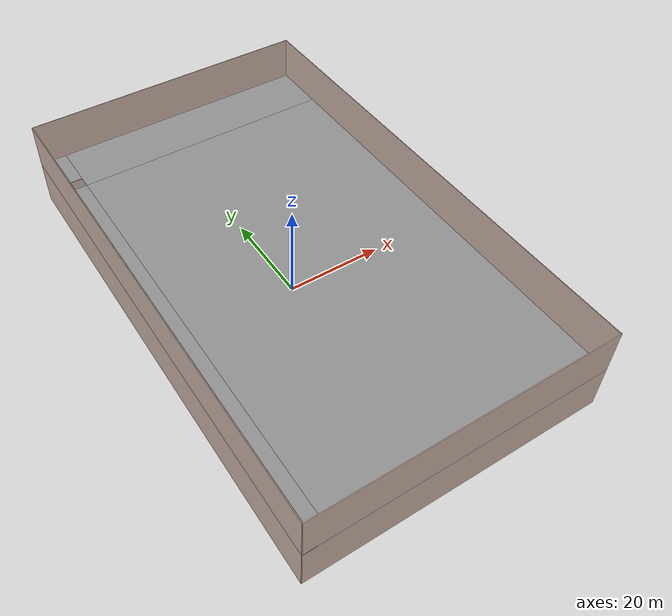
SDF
<?xml version='1.0'?>
<sdf version='1.7'>
  <model name='building1'>
    <link name='Floor_4'>
      <pose>1e-06 -3e-06 9.5 0 -0 0</pose>
      <self_collide>0</self_collide>
      <enable_wind>0</enable_wind>
      <kinematic>0</kinematic>
      <gravity>1</gravity>
      <inertial>
        <mass>1</mass>
        <pose>0 0 0 0 -0 0</pose>
        <inertia>
          <ixx>1</ixx>
          <ixy>0</ixy>
          <ixz>0</ixz>
          <iyy>1</iyy>
          <iyz>0</iyz>
          <izz>1</izz>
        </inertia>
      </inertial>
      <visual name='Floor_4_Visual_1'>
        <pose>2.65 -5.4875 0.05 0 -0 0</pose>
        <geometry>
          <box>
            <size>54.8 88.55 0.1</size>
          </box>
        </geometry>
        <material>
          <script>
            <uri>file://media/materials/scripts/gazebo.material</uri>
            <name>Gazebo/Grey</name>
          </script>
          <ambient>1 1 1 1</ambient>
          <shader type='pixel'>
            <normal_map>__default__</normal_map>
          </shader>
          <diffuse>0.7 0.7 0.7 1</diffuse>
          <specular>0.01 0.01 0.01 1</specular>
          <emissive>0 0 0 1</emissive>
        </material>
        <meta>
          <layer>1</layer>
        </meta>
        <transparency>0</transparency>
        <cast_shadows>1</cast_shadows>
      </visual>
      <visual name='Floor_4_Visual_3'>
        <pose>-26.0025 45.7 0.05 0 -0 0</pose>
        <geometry>
          <box>
            <size>2.515 8.8 0.1</size>
          </box>
        </geometry>
        <material>
          <script>
            <uri>file://media/materials/scripts/gazebo.material</uri>
            <name>Gazebo/Grey</name>
          </script>
          <ambient>1 1 1 1</ambient>
          <shader type='pixel'>
            <normal_map>__default__</normal_map>
          </shader>
          <diffuse>0.7 0.7 0.7 1</diffuse>
          <specular>0.01 0.01 0.01 1</specular>
          <emissive>0 0 0 1</emissive>
        </material>
        <meta>
          <layer>1</layer>
        </meta>
        <transparency>0</transparency>
        <cast_shadows>1</cast_shadows>
      </visual>
      <visual name='ModelPreview_8::Floor_4::visual_4'>
        <pose>-26.0025 -5.6 0.05 0 -0 0</pose>
        <geometry>
          <box>
            <size>2.55 88.8 0.1</size>
          </box>
        </geometry>
        <material>
          <script>
            <uri>file://media/materials/scripts/gazebo.material</uri>
            <name>Gazebo/Grey</name>
          </script>
          <ambient>1 1 1 1</ambient>
          <shader type='pixel'>
            <normal_map>__default__</normal_map>
          </shader>
          <diffuse>0.7 0.7 0.7 1</diffuse>
          <specular>0.01 0.01 0.01 1</specular>
          <emissive>0 0 0 1</emissive>
        </material>
        <meta>
          <layer>1</layer>
        </meta>
        <transparency>0</transparency>
        <cast_shadows>1</cast_shadows>
      </visual>
      <visual name='Floor_4_Visual_2'>
        <pose>2.65 44.39 0.05 0 -0 0</pose>
        <geometry>
          <box>
            <size>54.8 11.205 0.1</size>
          </box>
        </geometry>
        <material>
          <script>
            <uri>file://media/materials/scripts/gazebo.material</uri>
            <name>Gazebo/Grey</name>
          </script>
          <ambient>1 1 1 1</ambient>
          <shader type='pixel'>
            <normal_map>__default__</normal_map>
          </shader>
          <diffuse>0.7 0.7 0.7 1</diffuse>
          <specular>0.01 0.01 0.01 1</specular>
          <emissive>0 0 0 1</emissive>
        </material>
        <meta>
          <layer>1</layer>
        </meta>
        <transparency>0</transparency>
        <cast_shadows>1</cast_shadows>
      </visual>
      <visual name='Floor_4_Visual_0'>
        <pose>-28.63 0 0.05 0 -0 0</pose>
        <geometry>
          <box>
            <size>2.75 100.232 0.1</size>
          </box>
        </geometry>
        <material>
          <script>
            <uri>file://media/materials/scripts/gazebo.material</uri>
            <name>Gazebo/Grey</name>
          </script>
          <ambient>1 1 1 1</ambient>
          <shader type='pixel'>
            <normal_map>__default__</normal_map>
          </shader>
          <diffuse>0.7 0.7 0.7 1</diffuse>
          <specular>0.01 0.01 0.01 1</specular>
          <emissive>0 0 0 1</emissive>
        </material>
        <meta>
          <layer>1</layer>
        </meta>
        <transparency>0</transparency>
        <cast_shadows>1</cast_shadows>
      </visual>
      <collision name='Floor_4_Collision_1'>
        <laser_retro>0</laser_retro>
        <max_contacts>10</max_contacts>
        <pose>1.345 -5.4875 0.05 0 -0 0</pose>
        <geometry>
          <box>
            <size>57.2 88.55 0.1</size>
          </box>
        </geometry>
        <surface>
          <friction>
            <ode>
              <mu>1</mu>
              <mu2>1</mu2>
              <fdir1>0 0 0</fdir1>
              <slip1>0</slip1>
              <slip2>0</slip2>
            </ode>
            <torsional>
              <coefficient>1</coefficient>
              <patch_radius>0</patch_radius>
              <surface_radius>0</surface_radius>
              <use_patch_radius>1</use_patch_radius>
              <ode>
                <slip>0</slip>
              </ode>
            </torsional>
          </friction>
          <bounce>
            <restitution_coefficient>0</restitution_coefficient>
            <threshold>1e+06</threshold>
          </bounce>
          <contact>
            <collide_without_contact>0</collide_without_contact>
            <collide_without_contact_bitmask>1</collide_without_contact_bitmask>
            <collide_bitmask>1</collide_bitmask>
            <ode>
              <soft_cfm>0</soft_cfm>
              <soft_erp>0.2</soft_erp>
              <kp>1e+13</kp>
              <kd>1</kd>
              <max_vel>0.01</max_vel>
              <min_depth>0</min_depth>
            </ode>
            <bullet>
              <split_impulse>1</split_impulse>
              <split_impulse_penetration_threshold>-0.01</split_impulse_penetration_threshold>
              <soft_cfm>0</soft_cfm>
              <soft_erp>0.2</soft_erp>
              <kp>1e+13</kp>
              <kd>1</kd>
            </bullet>
          </contact>
        </surface>
      </collision>
      <collision name='Floor_4_Collision_2'>
        <laser_retro>0</laser_retro>
        <max_contacts>10</max_contacts>
        <pose>2.65 44.39 0.05 0 -0 0</pose>
        <geometry>
          <box>
            <size>54.8 11.205 0.1</size>
          </box>
        </geometry>
        <surface>
          <friction>
            <ode>
              <mu>1</mu>
              <mu2>1</mu2>
              <fdir1>0 0 0</fdir1>
              <slip1>0</slip1>
              <slip2>0</slip2>
            </ode>
            <torsional>
              <coefficient>1</coefficient>
              <patch_radius>0</patch_radius>
              <surface_radius>0</surface_radius>
              <use_patch_radius>1</use_patch_radius>
              <ode>
                <slip>0</slip>
              </ode>
            </torsional>
          </friction>
          <bounce>
            <restitution_coefficient>0</restitution_coefficient>
            <threshold>1e+06</threshold>
          </bounce>
          <contact>
            <collide_without_contact>0</collide_without_contact>
            <collide_without_contact_bitmask>1</collide_without_contact_bitmask>
            <collide_bitmask>1</collide_bitmask>
            <ode>
              <soft_cfm>0</soft_cfm>
              <soft_erp>0.2</soft_erp>
              <kp>1e+13</kp>
              <kd>1</kd>
              <max_vel>0.01</max_vel>
              <min_depth>0</min_depth>
            </ode>
            <bullet>
              <split_impulse>1</split_impulse>
              <split_impulse_penetration_threshold>-0.01</split_impulse_penetration_threshold>
              <soft_cfm>0</soft_cfm>
              <soft_erp>0.2</soft_erp>
              <kp>1e+13</kp>
              <kd>1</kd>
            </bullet>
          </contact>
        </surface>
      </collision>
      <collision name='Floor_4_Collision_3'>
        <laser_retro>0</laser_retro>
        <max_contacts>10</max_contacts>
        <pose>-26.0025 45.7 0.05 0 -0 0</pose>
        <geometry>
          <box>
            <size>2.515 8.8 0.1</size>
          </box>
        </geometry>
        <surface>
          <friction>
            <ode>
              <mu>1</mu>
              <mu2>1</mu2>
              <fdir1>0 0 0</fdir1>
              <slip1>0</slip1>
              <slip2>0</slip2>
            </ode>
            <torsional>
              <coefficient>1</coefficient>
              <patch_radius>0</patch_radius>
              <surface_radius>0</surface_radius>
              <use_patch_radius>1</use_patch_radius>
              <ode>
                <slip>0</slip>
              </ode>
            </torsional>
          </friction>
          <bounce>
            <restitution_coefficient>0</restitution_coefficient>
            <threshold>1e+06</threshold>
          </bounce>
          <contact>
            <collide_without_contact>0</collide_without_contact>
            <collide_without_contact_bitmask>1</collide_without_contact_bitmask>
            <collide_bitmask>1</collide_bitmask>
            <ode>
              <soft_cfm>0</soft_cfm>
              <soft_erp>0.2</soft_erp>
              <kp>1e+13</kp>
              <kd>1</kd>
              <max_vel>0.01</max_vel>
              <min_depth>0</min_depth>
            </ode>
            <bullet>
              <split_impulse>1</split_impulse>
              <split_impulse_penetration_threshold>-0.01</split_impulse_penetration_threshold>
              <soft_cfm>0</soft_cfm>
              <soft_erp>0.2</soft_erp>
              <kp>1e+13</kp>
              <kd>1</kd>
            </bullet>
          </contact>
        </surface>
      </collision>
      <collision name='Floor_4_Collision_0'>
        <laser_retro>0</laser_retro>
        <max_contacts>10</max_contacts>
        <pose>-28.63 0 0.05 0 -0 0</pose>
        <geometry>
          <box>
            <size>2.74 100.232 0.1</size>
          </box>
        </geometry>
        <surface>
          <friction>
            <ode>
              <mu>1</mu>
              <mu2>1</mu2>
              <fdir1>0 0 0</fdir1>
              <slip1>0</slip1>
              <slip2>0</slip2>
            </ode>
            <torsional>
              <coefficient>1</coefficient>
              <patch_radius>0</patch_radius>
              <surface_radius>0</surface_radius>
              <use_patch_radius>1</use_patch_radius>
              <ode>
                <slip>0</slip>
              </ode>
            </torsional>
          </friction>
          <bounce>
            <restitution_coefficient>0</restitution_coefficient>
            <threshold>1e+06</threshold>
          </bounce>
          <contact>
            <collide_without_contact>0</collide_without_contact>
            <collide_without_contact_bitmask>1</collide_without_contact_bitmask>
            <collide_bitmask>1</collide_bitmask>
            <ode>
              <soft_cfm>0</soft_cfm>
              <soft_erp>0.2</soft_erp>
              <kp>1e+13</kp>
              <kd>1</kd>
              <max_vel>0.01</max_vel>
              <min_depth>0</min_depth>
            </ode>
            <bullet>
              <split_impulse>1</split_impulse>
              <split_impulse_penetration_threshold>-0.01</split_impulse_penetration_threshold>
              <soft_cfm>0</soft_cfm>
              <soft_erp>0.2</soft_erp>
              <kp>1e+13</kp>
              <kd>1</kd>
            </bullet>
          </contact>
        </surface>
      </collision>
    </link>

    <link name='Wall_25'>
      <pose>-30.0274 0.041012 0 0 -0 1.5708</pose>
      <self_collide>0</self_collide>
      <enable_wind>0</enable_wind>
      <kinematic>0</kinematic>
      <visual name='Wall_25_Visual'>
        <pose>0 0 4.7 0 -0 0</pose>
        <geometry>
          <box>
            <size>100.15 0.15 9.5</size>
          </box>
        </geometry>
        <material>
          <script>
            <uri>file://media/materials/scripts/gazebo.material</uri>
            <name>Gazebo/Grey</name>
          </script>
          <ambient>0.760784 0.662745 0.627451 1</ambient>
          <shader type='pixel'/>
        </material>
        <meta>
          <layer>0</layer>
        </meta>
        <transparency>0</transparency>
        <cast_shadows>1</cast_shadows>
      </visual>
      <collision name='Wall_25_Collision'>
        <laser_retro>0</laser_retro>
        <max_contacts>10</max_contacts>
        <pose>0 0 4.7 0 -0 0</pose>
        <geometry>
          <box>
            <size>100.15 0.15 9.5</size>
          </box>
        </geometry>
        <surface>
          <friction>
            <ode>
              <mu>1</mu>
              <mu2>1</mu2>
              <fdir1>0 0 0</fdir1>
              <slip1>0</slip1>
              <slip2>0</slip2>
            </ode>
            <torsional>
              <coefficient>1</coefficient>
              <patch_radius>0</patch_radius>
              <surface_radius>0</surface_radius>
              <use_patch_radius>1</use_patch_radius>
              <ode>
                <slip>0</slip>
              </ode>
            </torsional>
          </friction>
          <bounce>
            <restitution_coefficient>0</restitution_coefficient>
            <threshold>1e+06</threshold>
          </bounce>
          <contact>
            <collide_without_contact>0</collide_without_contact>
            <collide_without_contact_bitmask>1</collide_without_contact_bitmask>
            <collide_bitmask>1</collide_bitmask>
            <ode>
              <soft_cfm>0</soft_cfm>
              <soft_erp>0.2</soft_erp>
              <kp>1e+13</kp>
              <kd>1</kd>
              <max_vel>0.01</max_vel>
              <min_depth>0</min_depth>
            </ode>
            <bullet>
              <split_impulse>1</split_impulse>
              <split_impulse_penetration_threshold>-0.01</split_impulse_penetration_threshold>
              <soft_cfm>0</soft_cfm>
              <soft_erp>0.2</soft_erp>
              <kp>1e+13</kp>
              <kd>1</kd>
            </bullet>
          </contact>
        </surface>
      </collision>
    </link>

    <link name='Wall_26'>
      <pose>-0.027363 50.041 0 0 -0 0</pose>
      <self_collide>0</self_collide>
      <enable_wind>0</enable_wind>
      <kinematic>0</kinematic>
      <visual name='Wall_26_Visual'>
        <pose>0 0 4.7 0 -0 0</pose>
        <geometry>
          <box>
            <size>60.15 0.15 9.5</size>
          </box>
        </geometry>
        <material>
          <script>
            <uri>file://media/materials/scripts/gazebo.material</uri>
            <name>Gazebo/Grey</name>
          </script>
          <ambient>0.760784 0.662745 0.627451 1</ambient>
          <shader type='pixel'/>
        </material>
        <meta>
          <layer>0</layer>
        </meta>
        <transparency>0</transparency>
        <cast_shadows>1</cast_shadows>
      </visual>
      <collision name='Wall_26_Collision'>
        <laser_retro>0</laser_retro>
        <max_contacts>10</max_contacts>
        <pose>0 0 4.7 0 -0 0</pose>
        <geometry>
          <box>
            <size>60.15 0.15 9.5</size>
          </box>
        </geometry>
        <surface>
          <friction>
            <ode>
              <mu>1</mu>
              <mu2>1</mu2>
              <fdir1>0 0 0</fdir1>
              <slip1>0</slip1>
              <slip2>0</slip2>
            </ode>
            <torsional>
              <coefficient>1</coefficient>
              <patch_radius>0</patch_radius>
              <surface_radius>0</surface_radius>
              <use_patch_radius>1</use_patch_radius>
              <ode>
                <slip>0</slip>
              </ode>
            </torsional>
          </friction>
          <bounce>
            <restitution_coefficient>0</restitution_coefficient>
            <threshold>1e+06</threshold>
          </bounce>
          <contact>
            <collide_without_contact>0</collide_without_contact>
            <collide_without_contact_bitmask>1</collide_without_contact_bitmask>
            <collide_bitmask>1</collide_bitmask>
            <ode>
              <soft_cfm>0</soft_cfm>
              <soft_erp>0.2</soft_erp>
              <kp>1e+13</kp>
              <kd>1</kd>
              <max_vel>0.01</max_vel>
              <min_depth>0</min_depth>
            </ode>
            <bullet>
              <split_impulse>1</split_impulse>
              <split_impulse_penetration_threshold>-0.01</split_impulse_penetration_threshold>
              <soft_cfm>0</soft_cfm>
              <soft_erp>0.2</soft_erp>
              <kp>1e+13</kp>
              <kd>1</kd>
            </bullet>
          </contact>
        </surface>
      </collision>
    </link>

    <link name='Wall_27'>
      <pose>29.9726 0.041012 0 0 0 -1.5708</pose>
      <self_collide>0</self_collide>
      <enable_wind>0</enable_wind>
      <kinematic>0</kinematic>
      <visual name='Wall_27_Visual'>
        <pose>0 0 4.7 0 -0 0</pose>
        <geometry>
          <box>
            <size>100.15 0.15 9.5</size>
          </box>
        </geometry>
        <material>
          <script>
            <uri>file://media/materials/scripts/gazebo.material</uri>
            <name>Gazebo/Grey</name>
          </script>
          <ambient>0.760784 0.662745 0.627451 1</ambient>
          <shader type='pixel'/>
        </material>
        <meta>
          <layer>0</layer>
        </meta>
        <transparency>0</transparency>
        <cast_shadows>1</cast_shadows>
      </visual>
      <collision name='Wall_27_Collision'>
        <laser_retro>0</laser_retro>
        <max_contacts>10</max_contacts>
        <pose>0 0 4.7 0 -0 0</pose>
        <geometry>
          <box>
            <size>100.15 0.15 9.5</size>
          </box>
        </geometry>
        <surface>
          <friction>
            <ode>
              <mu>1</mu>
              <mu2>1</mu2>
              <fdir1>0 0 0</fdir1>
              <slip1>0</slip1>
              <slip2>0</slip2>
            </ode>
            <torsional>
              <coefficient>1</coefficient>
              <patch_radius>0</patch_radius>
              <surface_radius>0</surface_radius>
              <use_patch_radius>1</use_patch_radius>
              <ode>
                <slip>0</slip>
              </ode>
            </torsional>
          </friction>
          <bounce>
            <restitution_coefficient>0</restitution_coefficient>
            <threshold>1e+06</threshold>
          </bounce>
          <contact>
            <collide_without_contact>0</collide_without_contact>
            <collide_without_contact_bitmask>1</collide_without_contact_bitmask>
            <collide_bitmask>1</collide_bitmask>
            <ode>
              <soft_cfm>0</soft_cfm>
              <soft_erp>0.2</soft_erp>
              <kp>1e+13</kp>
              <kd>1</kd>
              <max_vel>0.01</max_vel>
              <min_depth>0</min_depth>
            </ode>
            <bullet>
              <split_impulse>1</split_impulse>
              <split_impulse_penetration_threshold>-0.01</split_impulse_penetration_threshold>
              <soft_cfm>0</soft_cfm>
              <soft_erp>0.2</soft_erp>
              <kp>1e+13</kp>
              <kd>1</kd>
            </bullet>
          </contact>
        </surface>
      </collision>
    </link>

    <link name='Wall_34'>
      <pose>1e-06 -49.9999 0 0 0 -0.001364</pose>
      <self_collide>0</self_collide>
      <enable_wind>0</enable_wind>
      <kinematic>0</kinematic>
      <visual name='Wall_34_Visual'>
        <pose>0 0 4.7 0 -0 0</pose>
        <geometry>
          <box>
            <size>60.2048 0.15 9.5</size>
          </box>
        </geometry>
        <material>
          <script>
            <uri>file://media/materials/scripts/gazebo.material</uri>
            <name>Gazebo/Grey</name>
          </script>
          <ambient>0.760784 0.662745 0.627451 1</ambient>
          <shader type='pixel'/>
        </material>
        <meta>
          <layer>0</layer>
        </meta>
        <transparency>0</transparency>
        <cast_shadows>1</cast_shadows>
      </visual>
      <collision name='Wall_34_Collision'>
        <laser_retro>0</laser_retro>
        <max_contacts>10</max_contacts>
        <pose>0 0 4.7 0 -0 0</pose>
        <geometry>
          <box>
            <size>60.2048 0.15 9.5</size>
          </box>
        </geometry>
        <surface>
          <friction>
            <ode>
              <mu>1</mu>
              <mu2>1</mu2>
              <fdir1>0 0 0</fdir1>
              <slip1>0</slip1>
              <slip2>0</slip2>
            </ode>
            <torsional>
              <coefficient>1</coefficient>
              <patch_radius>0</patch_radius>
              <surface_radius>0</surface_radius>
              <use_patch_radius>1</use_patch_radius>
              <ode>
                <slip>0</slip>
              </ode>
            </torsional>
          </friction>
          <bounce>
            <restitution_coefficient>0</restitution_coefficient>
            <threshold>1e+06</threshold>
          </bounce>
          <contact>
            <collide_without_contact>0</collide_without_contact>
            <collide_without_contact_bitmask>1</collide_without_contact_bitmask>
            <collide_bitmask>1</collide_bitmask>
            <ode>
              <soft_cfm>0</soft_cfm>
              <soft_erp>0.2</soft_erp>
              <kp>1e+13</kp>
              <kd>1</kd>
              <max_vel>0.01</max_vel>
              <min_depth>0</min_depth>
            </ode>
            <bullet>
              <split_impulse>1</split_impulse>
              <split_impulse_penetration_threshold>-0.01</split_impulse_penetration_threshold>
              <soft_cfm>0</soft_cfm>
              <soft_erp>0.2</soft_erp>
              <kp>1e+13</kp>
              <kd>1</kd>
            </bullet>
          </contact>
        </surface>
      </collision>
    </link>

    <link name='Wall_44'>
      <pose>-30.0274 0.041012 9.5 0 -0 1.5708</pose>
      <self_collide>0</self_collide>
      <enable_wind>0</enable_wind>
      <kinematic>0</kinematic>
      <visual name='Wall_44_Visual'>
        <pose>0 0 4.7 0 -0 0</pose>
        <geometry>
          <box>
            <size>100.15 0.15 9.5</size>
          </box>
        </geometry>
        <material>
          <script>
            <uri>file://media/materials/scripts/gazebo.material</uri>
            <name>Gazebo/Grey</name>
          </script>
          <ambient>0.760784 0.662745 0.627451 1</ambient>
          <shader type='pixel'/>
        </material>
        <meta>
          <layer>1</layer>
        </meta>
        <transparency>0</transparency>
        <cast_shadows>1</cast_shadows>
      </visual>
      <collision name='Wall_44_Collision'>
        <laser_retro>0</laser_retro>
        <max_contacts>10</max_contacts>
        <pose>0 0 4.7 0 -0 0</pose>
        <geometry>
          <box>
            <size>100.15 0.15 9.5</size>
          </box>
        </geometry>
        <surface>
          <friction>
            <ode>
              <mu>1</mu>
              <mu2>1</mu2>
              <fdir1>0 0 0</fdir1>
              <slip1>0</slip1>
              <slip2>0</slip2>
            </ode>
            <torsional>
              <coefficient>1</coefficient>
              <patch_radius>0</patch_radius>
              <surface_radius>0</surface_radius>
              <use_patch_radius>1</use_patch_radius>
              <ode>
                <slip>0</slip>
              </ode>
            </torsional>
          </friction>
          <bounce>
            <restitution_coefficient>0</restitution_coefficient>
            <threshold>1e+06</threshold>
          </bounce>
          <contact>
            <collide_without_contact>0</collide_without_contact>
            <collide_without_contact_bitmask>1</collide_without_contact_bitmask>
            <collide_bitmask>1</collide_bitmask>
            <ode>
              <soft_cfm>0</soft_cfm>
              <soft_erp>0.2</soft_erp>
              <kp>1e+13</kp>
              <kd>1</kd>
              <max_vel>0.01</max_vel>
              <min_depth>0</min_depth>
            </ode>
            <bullet>
              <split_impulse>1</split_impulse>
              <split_impulse_penetration_threshold>-0.01</split_impulse_penetration_threshold>
              <soft_cfm>0</soft_cfm>
              <soft_erp>0.2</soft_erp>
              <kp>1e+13</kp>
              <kd>1</kd>
            </bullet>
          </contact>
        </surface>
      </collision>
    </link>
    <link name='Wall_45'>
      <pose>-0.027363 50.041 9.5 0 -0 0</pose>
      <self_collide>0</self_collide>
      <enable_wind>0</enable_wind>
      <kinematic>0</kinematic>
      <visual name='Wall_45_Visual'>
        <pose>0 0 4.7 0 -0 0</pose>
        <geometry>
          <box>
            <size>60.15 0.15 9.5</size>
          </box>
        </geometry>
        <material>
          <script>
            <uri>file://media/materials/scripts/gazebo.material</uri>
            <name>Gazebo/Grey</name>
          </script>
          <ambient>0.760784 0.662745 0.627451 1</ambient>
          <shader type='pixel'/>
        </material>
        <meta>
          <layer>1</layer>
        </meta>
        <transparency>0</transparency>
        <cast_shadows>1</cast_shadows>
      </visual>
      <collision name='Wall_45_Collision'>
        <laser_retro>0</laser_retro>
        <max_contacts>10</max_contacts>
        <pose>0 0 4.7 0 -0 0</pose>
        <geometry>
          <box>
            <size>60.15 0.15 9.5</size>
          </box>
        </geometry>
        <surface>
          <friction>
            <ode>
              <mu>1</mu>
              <mu2>1</mu2>
              <fdir1>0 0 0</fdir1>
              <slip1>0</slip1>
              <slip2>0</slip2>
            </ode>
            <torsional>
              <coefficient>1</coefficient>
              <patch_radius>0</patch_radius>
              <surface_radius>0</surface_radius>
              <use_patch_radius>1</use_patch_radius>
              <ode>
                <slip>0</slip>
              </ode>
            </torsional>
          </friction>
          <bounce>
            <restitution_coefficient>0</restitution_coefficient>
            <threshold>1e+06</threshold>
          </bounce>
          <contact>
            <collide_without_contact>0</collide_without_contact>
            <collide_without_contact_bitmask>1</collide_without_contact_bitmask>
            <collide_bitmask>1</collide_bitmask>
            <ode>
              <soft_cfm>0</soft_cfm>
              <soft_erp>0.2</soft_erp>
              <kp>1e+13</kp>
              <kd>1</kd>
              <max_vel>0.01</max_vel>
              <min_depth>0</min_depth>
            </ode>
            <bullet>
              <split_impulse>1</split_impulse>
              <split_impulse_penetration_threshold>-0.01</split_impulse_penetration_threshold>
              <soft_cfm>0</soft_cfm>
              <soft_erp>0.2</soft_erp>
              <kp>1e+13</kp>
              <kd>1</kd>
            </bullet>
          </contact>
        </surface>
      </collision>
    </link>
    <link name='Wall_46'>
      <pose>29.9726 0.041012 9.5 0 0 -1.5708</pose>
      <self_collide>0</self_collide>
      <enable_wind>0</enable_wind>
      <kinematic>0</kinematic>
      <visual name='Wall_46_Visual'>
        <pose>0 0 4.7 0 -0 0</pose>
        <geometry>
          <box>
            <size>100.15 0.15 9.5</size>
          </box>
        </geometry>
        <material>
          <script>
            <uri>file://media/materials/scripts/gazebo.material</uri>
            <name>Gazebo/Grey</name>
          </script>
          <ambient>0.760784 0.662745 0.627451 1</ambient>
          <shader type='pixel'/>
        </material>
        <meta>
          <layer>1</layer>
        </meta>
        <transparency>0</transparency>
        <cast_shadows>1</cast_shadows>
      </visual>
      <collision name='Wall_46_Collision'>
        <laser_retro>0</laser_retro>
        <max_contacts>10</max_contacts>
        <pose>0 0 4.7 0 -0 0</pose>
        <geometry>
          <box>
            <size>100.15 0.15 9.5</size>
          </box>
        </geometry>
        <surface>
          <friction>
            <ode>
              <mu>1</mu>
              <mu2>1</mu2>
              <fdir1>0 0 0</fdir1>
              <slip1>0</slip1>
              <slip2>0</slip2>
            </ode>
            <torsional>
              <coefficient>1</coefficient>
              <patch_radius>0</patch_radius>
              <surface_radius>0</surface_radius>
              <use_patch_radius>1</use_patch_radius>
              <ode>
                <slip>0</slip>
              </ode>
            </torsional>
          </friction>
          <bounce>
            <restitution_coefficient>0</restitution_coefficient>
            <threshold>1e+06</threshold>
          </bounce>
          <contact>
            <collide_without_contact>0</collide_without_contact>
            <collide_without_contact_bitmask>1</collide_without_contact_bitmask>
            <collide_bitmask>1</collide_bitmask>
            <ode>
              <soft_cfm>0</soft_cfm>
              <soft_erp>0.2</soft_erp>
              <kp>1e+13</kp>
              <kd>1</kd>
              <max_vel>0.01</max_vel>
              <min_depth>0</min_depth>
            </ode>
            <bullet>
              <split_impulse>1</split_impulse>
              <split_impulse_penetration_threshold>-0.01</split_impulse_penetration_threshold>
              <soft_cfm>0</soft_cfm>
              <soft_erp>0.2</soft_erp>
              <kp>1e+13</kp>
              <kd>1</kd>
            </bullet>
          </contact>
        </surface>
      </collision>
    </link>
    <link name='Wall_47'>
      <pose>1e-06 -49.9999 9.5 0 0 -0.001364</pose>
      <self_collide>0</self_collide>
      <enable_wind>0</enable_wind>
      <kinematic>0</kinematic>
      <visual name='Wall_47_Visual'>
        <pose>0 0 4.7 0 -0 0</pose>
        <geometry>
          <box>
            <size>60.2048 0.15 9.5</size>
          </box>
        </geometry>
        <material>
          <script>
            <uri>file://media/materials/scripts/gazebo.material</uri>
            <name>Gazebo/Grey</name>
          </script>
          <ambient>0.760784 0.662745 0.627451 1</ambient>
          <shader type='pixel'/>
        </material>
        <meta>
          <layer>1</layer>
        </meta>
        <transparency>0</transparency>
        <cast_shadows>1</cast_shadows>
      </visual>
      <collision name='Wall_47_Collision'>
        <laser_retro>0</laser_retro>
        <max_contacts>10</max_contacts>
        <pose>0 0 4.7 0 -0 0</pose>
        <geometry>
          <box>
            <size>60.2048 0.15 9.5</size>
          </box>
        </geometry>
        <surface>
          <friction>
            <ode>
              <mu>1</mu>
              <mu2>1</mu2>
              <fdir1>0 0 0</fdir1>
              <slip1>0</slip1>
              <slip2>0</slip2>
            </ode>
            <torsional>
              <coefficient>1</coefficient>
              <patch_radius>0</patch_radius>
              <surface_radius>0</surface_radius>
              <use_patch_radius>1</use_patch_radius>
              <ode>
                <slip>0</slip>
              </ode>
            </torsional>
          </friction>
          <bounce>
            <restitution_coefficient>0</restitution_coefficient>
            <threshold>1e+06</threshold>
          </bounce>
          <contact>
            <collide_without_contact>0</collide_without_contact>
            <collide_without_contact_bitmask>1</collide_without_contact_bitmask>
            <collide_bitmask>1</collide_bitmask>
            <ode>
              <soft_cfm>0</soft_cfm>
              <soft_erp>0.2</soft_erp>
              <kp>1e+13</kp>
              <kd>1</kd>
              <max_vel>0.01</max_vel>
              <min_depth>0</min_depth>
            </ode>
            <bullet>
              <split_impulse>1</split_impulse>
              <split_impulse_penetration_threshold>-0.01</split_impulse_penetration_threshold>
              <soft_cfm>0</soft_cfm>
              <soft_erp>0.2</soft_erp>
              <kp>1e+13</kp>
              <kd>1</kd>
            </bullet>
          </contact>
        </surface>
      </collision>
    </link>
    <static>1</static>
    <allow_auto_disable>1</allow_auto_disable>
  </model>
</sdf>
